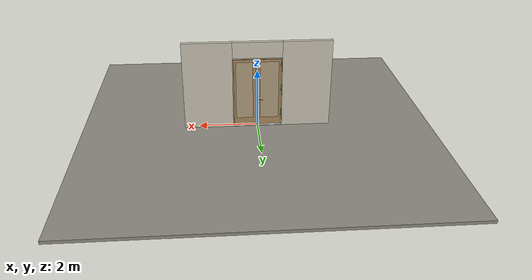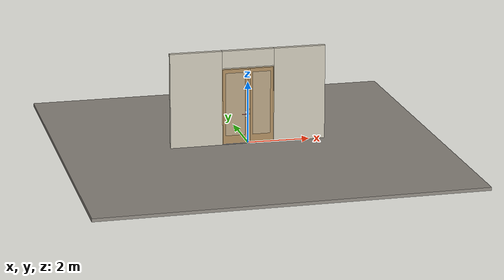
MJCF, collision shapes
<?xml version="1.0" ?>
<mujoco model="db0413_swing_double_full">
  <compiler angle="radian" meshdir="../../hardware" texturedir="../../textures" autolimits="true" inertiafromgeom="false"/>
  <option timestep="0.002" integrator="implicitfast" cone="elliptic" impratio="10" noslip_iterations="3">
    <flag multiccd="enable"/>
  </option>
  <size memory="16M"/>
  <default>
    <geom condim="4" solref="0.005 1" solimp="0.95 0.99 0.001"/>
    <joint solreflimit="0.005 1" solimplimit="0.95 0.99 0.001"/>
    <tendon solreflimit="0.005 1"/>
    <equality solref="0.002 1"/>
  </default>
  <visual>
    <headlight ambient="0.4 0.4 0.4" diffuse="0.7 0.7 0.7" specular="0.2 0.2 0.2"/>
    <quality shadowsize="4096"/>
    <map znear="0.01" zfar="60"/>
  </visual>
  <asset>
    <mesh name="cyl_face_e9e5036966" file="cyl_face_e9e5036966.obj"/>
    <mesh name="hinge_2af0f4d6ca" file="hinge_2af0f4d6ca.obj"/>
    <mesh name="hinge_jamb_c0c0a62ada" file="hinge_jamb_c0c0a62ada.obj"/>
    <mesh name="lever_f913fc5b7b" file="lever_f913fc5b7b.obj"/>
    <material name="mat_floor" rgba="0.55 0.53 0.5 1" specular="0.2" shininess="0.15" reflectance="0"/>
    <material name="mat_wall" rgba="0.78 0.76 0.7 1" specular="0.2" shininess="0.1" reflectance="0"/>
    <material name="mat_leaf_a" rgba="0.652 0.529 0.358 1" specular="0.2" shininess="0.45" reflectance="0"/>
    <material name="mat_glass" rgba="0.85 0.92 0.95 0.25" specular="0.2" shininess="0.95" reflectance="0.1"/>
    <material name="mat_hinge" rgba="0.65 0.66 0.68 1" specular="0.74" shininess="0.5" reflectance="0.36"/>
    <material name="mat_op_stainless" rgba="0.75 0.76 0.77 1" specular="0.8" shininess="0.65" reflectance="0.4"/>
    <material name="mat_trim" rgba="0.85 0.66 0.3 1" specular="0.8" shininess="0.75" reflectance="0.4"/>
    <material name="mat_bolt" rgba="0.85 0.66 0.3 1" specular="0.8" shininess="0.75" reflectance="0.4"/>
    <material name="mat_deadbolt" rgba="0.85 0.66 0.3 1" specular="0.8" shininess="0.75" reflectance="0.4"/>
    <material name="mat_leaf_b" rgba="0.652 0.529 0.358 1" specular="0.2" shininess="0.45" reflectance="0"/>
    <material name="mat_frame" rgba="0.82 0.7 0.5 1" specular="0.2" shininess="0.45" reflectance="0"/>
    <material name="mat_threshold" rgba="0.8 0.81 0.83 1" specular="0.8" shininess="0.6" reflectance="0.4"/>
    <material name="mat_astragal" rgba="0.8 0.81 0.83 1" specular="0.8" shininess="0.6" reflectance="0.4"/>
    <texture name="skybox" type="skybox" builtin="gradient" rgb1="0.6 0.7 0.85" rgb2="0.9 0.92 0.95" width="256" height="256"/>
  </asset>
  <worldbody>
    <light name="sun" pos="1.5 -2.5 4" dir="-0.3 0.5 -0.8" directional="true" diffuse="0.8 0.8 0.8" specular="0.3 0.3 0.3" castshadow="true"/>
    <light name="fill" pos="-1.5 2.5 3" dir="0.3 -0.5 -0.7" directional="true" diffuse="0.35 0.35 0.4" castshadow="false"/>
    <camera name="robot_view" pos="0 -2.892313 2.043887" xyaxes="1 0 0 0 0.26963 0.962964" fovy="52"/>
    <camera name="far_view" pos="0 2.953313 2.043887" xyaxes="-1 0 0 0 -0.26963 0.962964" fovy="52"/>
    <camera name="iso" pos="-2.221337 -2.424663 2.511538" xyaxes="0.741536 -0.670913 0 0.242917 0.268487 0.932151" fovy="46"/>
    <camera name="detail_handle" pos="0.0045 -0.877 1.245" xyaxes="0.97561 0.219512 0 -0.070934 0.315262 0.94635" fovy="38"/>
    <geom name="floor" type="box" size="6 6 0.05" pos="0 0 -0.05" material="mat_floor" group="0" contype="1" conaffinity="1" friction="0.8 0.005 0.0001" density="2400"/>
    <geom name="wall_left" type="box" size="0.83175 0.0725 1.5255" pos="-1.66825 0.0305 1.5255" material="mat_wall" group="0" contype="1" conaffinity="1" friction="0.6 0.005 0.0001" density="800"/>
    <geom name="wall_right" type="box" size="0.83175 0.0725 1.5255" pos="1.66825 0.0305 1.5255" material="mat_wall" group="0" contype="1" conaffinity="1" friction="0.6 0.005 0.0001" density="800"/>
    <geom name="wall_header" type="box" size="0.8365 0.0725 0.2755" pos="0 0.0305 2.7755" material="mat_wall" group="0" contype="1" conaffinity="1" friction="0.6 0.005 0.0001" density="800"/>
    <geom name="hinge_0_jamb" type="mesh" mesh="hinge_jamb_c0c0a62ada" pos="-0.8145 -0.029 0.267" material="mat_hinge" group="1" contype="0" conaffinity="0" density="7850"/>
    <geom name="hinge_1_jamb" type="mesh" mesh="hinge_jamb_c0c0a62ada" pos="-0.8145 -0.029 0.933667" material="mat_hinge" group="1" contype="0" conaffinity="0" density="7850"/>
    <geom name="hinge_2_jamb" type="mesh" mesh="hinge_jamb_c0c0a62ada" pos="-0.8145 -0.029 1.600333" material="mat_hinge" group="1" contype="0" conaffinity="0" density="7850"/>
    <geom name="hinge_3_jamb" type="mesh" mesh="hinge_jamb_c0c0a62ada" pos="-0.8145 -0.029 2.267" material="mat_hinge" group="1" contype="0" conaffinity="0" density="7850"/>
    <geom name="hinge_0_jamb_2" type="mesh" mesh="hinge_jamb_c0c0a62ada" pos="0.8145 -0.029 0.267" quat="0 0 1 0" material="mat_hinge" group="1" contype="0" conaffinity="0" density="7850"/>
    <geom name="hinge_1_jamb_2" type="mesh" mesh="hinge_jamb_c0c0a62ada" pos="0.8145 -0.029 0.933667" quat="0 0 1 0" material="mat_hinge" group="1" contype="0" conaffinity="0" density="7850"/>
    <geom name="hinge_2_jamb_2" type="mesh" mesh="hinge_jamb_c0c0a62ada" pos="0.8145 -0.029 1.600333" quat="0 0 1 0" material="mat_hinge" group="1" contype="0" conaffinity="0" density="7850"/>
    <geom name="hinge_3_jamb_2" type="mesh" mesh="hinge_jamb_c0c0a62ada" pos="0.8145 -0.029 2.267" quat="0 0 1 0" material="mat_hinge" group="1" contype="0" conaffinity="0" density="7850"/>
    <geom name="jamb_l" type="box" size="0.0095 0.0725 1.2255" pos="-0.827 0.0305 1.2255" material="mat_frame" group="0" contype="1" conaffinity="1" friction="0.6 0.005 0.0001" density="300"/>
    <geom name="jamb_r" type="box" size="0.0095 0.0725 1.2255" pos="0.827 0.0305 1.2255" material="mat_frame" group="0" contype="1" conaffinity="1" friction="0.6 0.005 0.0001" density="300"/>
    <geom name="jamb_head" type="box" size="0.8365 0.0725 0.0095" pos="0 0.0305 2.4605" material="mat_frame" group="0" contype="1" conaffinity="1" friction="0.6 0.005 0.0001" density="300"/>
    <geom name="head_stud" type="box" size="0.8365 0.0725 0.015" pos="0 0.0305 2.485" material="mat_wall" group="0" contype="1" conaffinity="1" friction="0.6 0.005 0.0001" density="500"/>
    <geom name="stop_l" type="box" size="0.015 0.006 1.2255" pos="-0.8025 0.0285 1.2255" material="mat_frame" group="0" contype="1" conaffinity="1" friction="0.6 0.005 0.0001" density="300"/>
    <geom name="stop_r" type="box" size="0.015 0.006 1.2255" pos="0.8025 0.0285 1.2255" material="mat_frame" group="0" contype="1" conaffinity="1" friction="0.6 0.005 0.0001" density="300"/>
    <geom name="stop_head" type="box" size="0.8175 0.006 0.015" pos="0 0.0285 2.436" material="mat_frame" group="0" contype="1" conaffinity="1" friction="0.6 0.005 0.0001" density="300"/>
    <geom name="threshold" type="box" size="0.8365 0.0725 0.0065" pos="0 0.0305 0.0065" material="mat_threshold" group="0" contype="1" conaffinity="1" friction="0.5 0.005 0.0001" density="2700"/>
    <site name="approach_point" pos="0 -1.5 0" quat="1 0 0 0" size="0.05" rgba="0.2 0.9 0.2 0.5" group="4"/>
    <site name="goal_point" pos="0 1.5 0" quat="1 0 0 0" size="0.05" rgba="0.2 0.9 0.2 0.5" group="4"/>
    <site name="door_plane_center" pos="0 0 1.2255" quat="1 0 0 0" size="0.02" rgba="0.2 0.9 0.2 0.5" group="4"/>
    <site name="approach_point_2" pos="0 -1.5 0" quat="1 0 0 0" size="0.05" rgba="0.2 0.9 0.2 0.5" group="4"/>
    <site name="goal_point_2" pos="0 1.5 0" quat="1 0 0 0" size="0.05" rgba="0.2 0.9 0.2 0.5" group="4"/>
    <site name="door_plane_center_2" pos="0 0 1.2255" quat="1 0 0 0" size="0.02" rgba="0.2 0.9 0.2 0.5" group="4"/>
    <site name="approach_point_3" pos="0 -1.5 0" quat="1 0 0 0" size="0.05" rgba="0.2 0.9 0.2 0.5" group="4"/>
    <site name="goal_point_3" pos="0 1.5 0" quat="1 0 0 0" size="0.05" rgba="0.2 0.9 0.2 0.5" group="4"/>
    <site name="door_plane_center_3" pos="0 0 1.2255" quat="1 0 0 0" size="0.02" rgba="0.2 0.9 0.2 0.5" group="4"/>
    <body name="leaf_a" pos="-0.8175 0 0">
      <inertial pos="0.397953 -0.000963 1.229299" mass="32.785978" quat="-0.499475 0.497783 0.502216 0.500515" diaginertia="2.022921311 15.896477917 17.907240168"/>
      <joint name="leaf_a_hinge" type="hinge" axis="0 0 -1" pos="0.003 -0.029 0" limited="true" range="0 1.919862" solreflimit="0.02 1" damping="0.242359" frictionloss="1.696158" armature="0.02"/>
      <geom name="leaf_a_slab" type="box" size="0.4065 0.022 1.215" pos="0.4095 0 1.232" material="mat_leaf_a" group="0" contype="1" conaffinity="1" friction="0.35 0.005 0.0001" density="1"/>
      <geom name="leaf_a_glass_0" type="box" size="0.3165 0.0228 1.0206" pos="0.4095 0 1.3049" material="mat_glass" group="1" contype="0" conaffinity="0" density="1"/>
      <geom name="hinge_0" type="mesh" mesh="hinge_2af0f4d6ca" pos="0.003 -0.029 0.267" material="mat_hinge" group="1" contype="0" conaffinity="0" density="7850"/>
      <geom name="hinge_1" type="mesh" mesh="hinge_2af0f4d6ca" pos="0.003 -0.029 0.933667" material="mat_hinge" group="1" contype="0" conaffinity="0" density="7850"/>
      <geom name="hinge_2" type="mesh" mesh="hinge_2af0f4d6ca" pos="0.003 -0.029 1.600333" material="mat_hinge" group="1" contype="0" conaffinity="0" density="7850"/>
      <geom name="hinge_3" type="mesh" mesh="hinge_2af0f4d6ca" pos="0.003 -0.029 2.267" material="mat_hinge" group="1" contype="0" conaffinity="0" density="7850"/>
      <geom name="leaf_a_handle_escutcheon_n" type="box" size="0.02 0.0015 0.11" pos="0.746 -0.0235 0.965" material="mat_op_stainless" group="1" contype="0" conaffinity="0" density="3000"/>
      <geom name="leaf_a_handle_escutcheon_p" type="box" size="0.02 0.0015 0.11" pos="0.746 0.0235 0.965" material="mat_op_stainless" group="1" contype="0" conaffinity="0" density="3000"/>
      <geom name="leaf_a_latch_bolt_faceplate" type="box" size="0.0006 0.01235 0.0267" pos="0.8154 0 0.965" material="mat_bolt" group="1" contype="0" conaffinity="0" density="8500"/>
      <geom name="leaf_a_deadbolt_faceplate" type="box" size="0.0006 0.014 0.0245" pos="0.8154 0 1.105" material="mat_deadbolt" group="1" contype="0" conaffinity="0" density="8500"/>
      <geom name="leaf_a_deadbolt_cylinder_face" type="mesh" mesh="cyl_face_e9e5036966" pos="0.751 -0.022 1.105" quat="0.707107 0.707107 0 0" material="mat_deadbolt" group="1" contype="0" conaffinity="0" density="7100"/>
      <site name="leaf_a_edge_mid" pos="0.816 0 1.215" quat="1 0 0 0" size="0.02" rgba="0.2 0.9 0.2 0.5" group="4"/>
      <body name="leaf_a_handle" pos="0.746 0 0.965">
        <inertial pos="-0.038995 0 0" mass="0.772658" quat="0.707107 0 0 -0.707107" diaginertia="0.001545312 0.003473151 0.004979007"/>
        <joint name="leaf_a_handle_hinge" type="hinge" axis="0 -1 0" limited="true" range="0 0.65" damping="0.225568" frictionloss="0.051863" stiffness="1" springref="-0.503022" armature="0.01"/>
        <geom name="leaf_a_handle_spindle" type="cylinder" size="0.006 0.034" pos="0 0 0" quat="0.707107 -0.707107 0 0" material="mat_op_stainless" group="1" contype="0" conaffinity="0" density="7850"/>
        <geom name="leaf_a_handle_lever_n" type="mesh" mesh="lever_f913fc5b7b" pos="0 -0.022 0" quat="0.707107 0.707107 0 0" material="mat_op_stainless" group="1" contype="0" conaffinity="0" density="3000"/>
        <geom name="leaf_a_handle_lever_col_n" type="capsule" size="0.0095 0.0555" pos="-0.065 -0.077 0" quat="0.707107 0 -0.707107 0" material="mat_op_stainless" group="3" contype="1" conaffinity="1" rgba="0.8 0.3 0.3 0.25" friction="0.7 0.01 0.0001" density="3000"/>
        <geom name="leaf_a_handle_hub_col_n" type="cylinder" size="0.012 0.022" pos="0 -0.052 0" quat="0.707107 -0.707107 0 0" material="mat_op_stainless" group="3" contype="1" conaffinity="1" rgba="0.8 0.3 0.3 0.25" friction="0.6 0.005 0.0001" density="3000"/>
        <geom name="leaf_a_handle_lever_p" type="mesh" mesh="lever_f913fc5b7b" pos="0 0.022 0" quat="-0.707107 0.707107 0 0" material="mat_op_stainless" group="1" contype="0" conaffinity="0" density="3000"/>
        <geom name="leaf_a_handle_lever_col_p" type="capsule" size="0.0095 0.0555" pos="-0.065 0.077 0" quat="0.707107 0 -0.707107 0" material="mat_op_stainless" group="3" contype="1" conaffinity="1" rgba="0.8 0.3 0.3 0.25" friction="0.7 0.01 0.0001" density="3000"/>
        <geom name="leaf_a_handle_hub_col_p" type="cylinder" size="0.012 0.022" pos="0 0.052 0" quat="0.707107 -0.707107 0 0" material="mat_op_stainless" group="3" contype="1" conaffinity="1" rgba="0.8 0.3 0.3 0.25" friction="0.6 0.005 0.0001" density="3000"/>
        <site name="leaf_a_handle_grip_n" pos="-0.104 -0.077 0" quat="1 0 0 0" size="0.012" rgba="0.2 0.9 0.2 0.5" group="4"/>
        <site name="leaf_a_handle_grip_p" pos="-0.104 0.077 0" quat="1 0 0 0" size="0.012" rgba="0.2 0.9 0.2 0.5" group="4"/>
      </body>
      <body name="leaf_a_latch_bolt" pos="0.816 0 0.965">
        <inertial pos="-0.00865 0 0" mass="0.041419" quat="0.92388 -0.382683 0 0" diaginertia="0.000000798 0.000005598 0.000005598"/>
        <joint name="leaf_a_latch_bolt_slide" type="slide" axis="-1 0 0" limited="true" range="0 0.0127" damping="2" frictionloss="0.3" stiffness="300" springref="-0.008333" armature="0.1"/>
        <geom name="leaf_a_latch_bolt_capsule" type="capsule" size="0.00635 0.015" pos="-0.00865 0 0" quat="0.707107 0 0.707107 0" material="mat_bolt" group="0" contype="1" conaffinity="1" friction="0.2 0.005 0.0001" density="8500"/>
      </body>
      <body name="leaf_a_deadbolt" pos="0.816 0 1.105">
        <inertial pos="-0.0023 0 0" mass="0.18836" quat="0 0 0.707107 0.707107" diaginertia="0.000013829 0.000052194 0.000057986"/>
        <geom name="leaf_a_deadbolt_box" type="box" size="0.0277 0.008 0.0125" pos="-0.0023 0 0" material="mat_deadbolt" group="0" contype="1" conaffinity="1" friction="0.3 0.005 0.0001" density="8500"/>
      </body>
    </body>
    <body name="leaf_b" pos="0.8175 0 0">
      <inertial pos="-0.473959 0.006795 1.230318" mass="31.87036" quat="0.509981 0.491948 -0.507966 0.489773" diaginertia="2.490173371 15.652058929 18.128731477"/>
      <joint name="leaf_b_hinge" type="hinge" axis="0 0 1" pos="-0.003 -0.029 0" limited="true" range="0 0.001" solreflimit="0.02 1" damping="0.242359" frictionloss="1.696158" armature="0.02"/>
      <geom name="leaf_b_edge_965_wall_n" type="box" size="0.03 0.007075 0.0167" pos="-0.786 0.014925 0.965" material="mat_leaf_b" group="0" contype="1" conaffinity="1" friction="0.6 0.005 0.0001" density="1"/>
      <geom name="leaf_b_edge_965_wall_p" type="box" size="0.03 0.008 0.0167" pos="-0.786 -0.01585 0.965" material="mat_leaf_b" group="0" contype="1" conaffinity="1" friction="0.6 0.005 0.0001" density="1"/>
      <geom name="leaf_b_edge_965_ramp" type="box" size="0.03 0.01649 0.0167" pos="-0.781861 -0.026388 0.965" quat="0.977148 0 0 0.212558" material="mat_leaf_b" group="0" contype="1" conaffinity="1" friction="0.12 0.005 0.0001" density="1"/>
      <geom name="leaf_b_edge_965_back" type="box" size="0.02165 0.00785 0.0167" pos="-0.77765 0 0.965" material="mat_leaf_b" group="0" contype="1" conaffinity="1" friction="0.6 0.005 0.0001" density="1"/>
      <geom name="leaf_b_edge_1105_wall_n" type="box" size="0.03 0.00625 0.0155" pos="-0.786 0.01575 1.105" material="mat_leaf_b" group="0" contype="1" conaffinity="1" friction="0.6 0.005 0.0001" density="1"/>
      <geom name="leaf_b_edge_1105_wall_p" type="box" size="0.03 0.00625 0.0155" pos="-0.786 -0.01575 1.105" material="mat_leaf_b" group="0" contype="1" conaffinity="1" friction="0.6 0.005 0.0001" density="1"/>
      <geom name="leaf_b_edge_1105_back" type="box" size="0.0153 0.0095 0.0155" pos="-0.7713 0 1.105" material="mat_leaf_b" group="0" contype="1" conaffinity="1" friction="0.6 0.005 0.0001" density="1"/>
      <geom name="leaf_b_edge_seg_0" type="box" size="0.03 0.022 0.46565" pos="-0.786 0 0.48265" material="mat_leaf_b" group="0" contype="1" conaffinity="1" friction="0.6 0.005 0.0001" density="1"/>
      <geom name="leaf_b_edge_seg_1" type="box" size="0.03 0.022 0.0539" pos="-0.786 0 1.0356" material="mat_leaf_b" group="0" contype="1" conaffinity="1" friction="0.6 0.005 0.0001" density="1"/>
      <geom name="leaf_b_edge_seg_2" type="box" size="0.03 0.022 0.66325" pos="-0.786 0 1.78375" material="mat_leaf_b" group="0" contype="1" conaffinity="1" friction="0.6 0.005 0.0001" density="1"/>
      <geom name="leaf_b_slab" type="box" size="0.3765 0.022 1.215" pos="-0.3795 0 1.232" material="mat_leaf_b" group="0" contype="1" conaffinity="1" friction="0.35 0.005 0.0001" density="1"/>
      <geom name="leaf_b_glass_0" type="box" size="0.2865 0.0228 1.0206" pos="-0.3795 0 1.3049" material="mat_glass" group="1" contype="0" conaffinity="0" density="1"/>
      <geom name="hinge_0_2" type="mesh" mesh="hinge_2af0f4d6ca" pos="-0.003 -0.029 0.267" quat="0 0 1 0" material="mat_hinge" group="1" contype="0" conaffinity="0" density="7850"/>
      <geom name="hinge_1_2" type="mesh" mesh="hinge_2af0f4d6ca" pos="-0.003 -0.029 0.933667" quat="0 0 1 0" material="mat_hinge" group="1" contype="0" conaffinity="0" density="7850"/>
      <geom name="hinge_2_2" type="mesh" mesh="hinge_2af0f4d6ca" pos="-0.003 -0.029 1.600333" quat="0 0 1 0" material="mat_hinge" group="1" contype="0" conaffinity="0" density="7850"/>
      <geom name="hinge_3_2" type="mesh" mesh="hinge_2af0f4d6ca" pos="-0.003 -0.029 2.267" quat="0 0 1 0" material="mat_hinge" group="1" contype="0" conaffinity="0" density="7850"/>
      <geom name="astragal" type="box" size="0.02 0.008 1.199" pos="-0.82 0.03 1.219" material="mat_astragal" group="0" contype="1" conaffinity="1" friction="0.6 0.005 0.0001" density="2700"/>
      <site name="leaf_b_edge_mid" pos="-0.816 0 1.215" quat="1 0 0 0" size="0.02" rgba="0.2 0.9 0.2 0.5" group="4"/>
    </body>
  </worldbody>
  <tendon>
    <fixed name="leaf_a_latch_bolt_coupling" limited="true" range="0 10">
      <joint joint="leaf_a_latch_bolt_slide" coef="1"/>
      <joint joint="leaf_a_handle_hinge" coef="-0.02082"/>
    </fixed>
  </tendon>
  <sensor>
    <jointpos name="leaf_a_hinge_pos" joint="leaf_a_hinge"/>
    <jointvel name="leaf_a_hinge_vel" joint="leaf_a_hinge"/>
    <jointpos name="leaf_a_handle_hinge_pos" joint="leaf_a_handle_hinge"/>
    <jointvel name="leaf_a_handle_hinge_vel" joint="leaf_a_handle_hinge"/>
    <jointpos name="leaf_a_latch_bolt_slide_pos" joint="leaf_a_latch_bolt_slide"/>
    <jointvel name="leaf_a_latch_bolt_slide_vel" joint="leaf_a_latch_bolt_slide"/>
    <jointpos name="leaf_b_hinge_pos" joint="leaf_b_hinge"/>
    <jointvel name="leaf_b_hinge_vel" joint="leaf_b_hinge"/>
  </sensor>
</mujoco>
